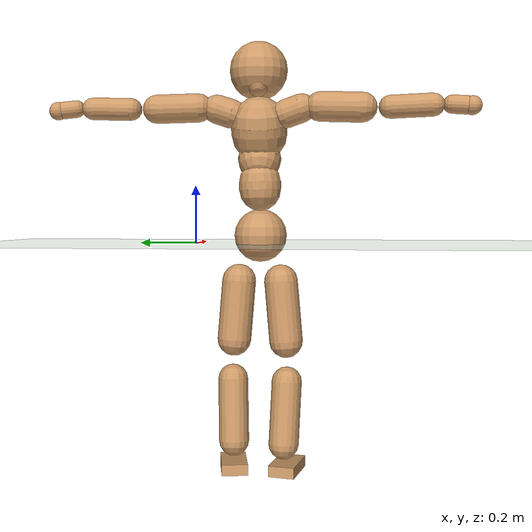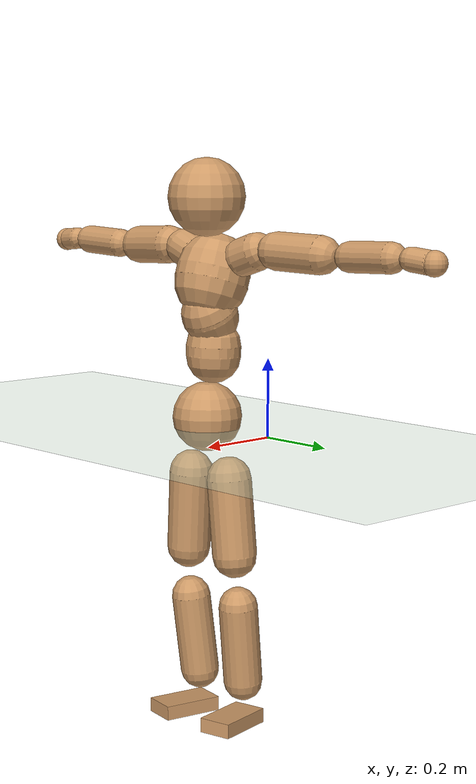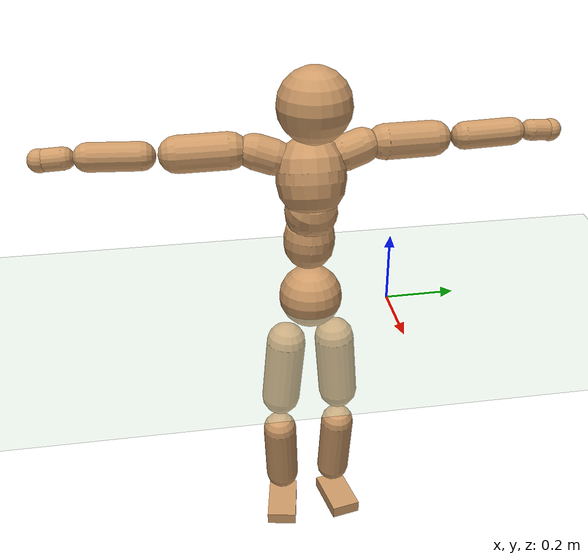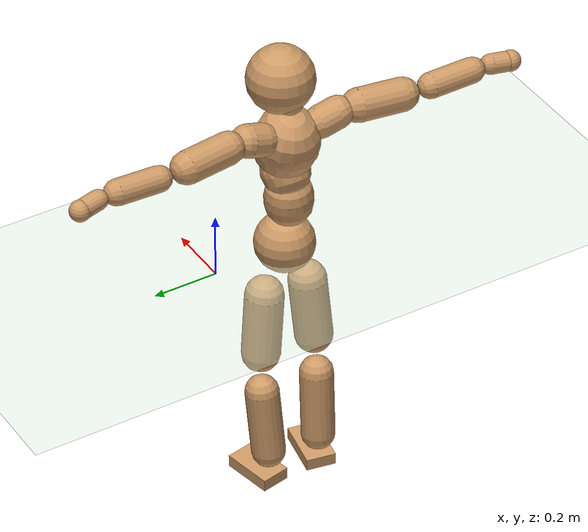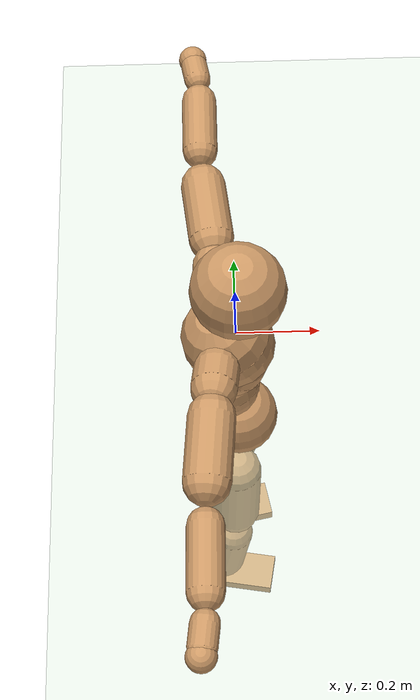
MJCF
<mujoco model="humanoid">
  <compiler coordinate="local"/>
  <default>
    <joint damping="0.0" armature="0.01" stiffness="0.0" limited="true"/>
    <geom conaffinity="1" condim="3" contype="7" margin="0.001" rgba="0.8 0.6 .4 1"/>
  </default>
  <asset>
    <texture type="skybox" builtin="gradient" rgb1=".4 .5 .6" rgb2="0 0 0" width="100" height="100"/>
    <texture builtin="flat" height="1278" mark="cross" markrgb="1 1 1" name="texgeom" random="0.01" rgb1="0.8 0.6 0.4" rgb2="0.8 0.6 0.4" type="cube" width="127"/>
    <texture builtin="checker" height="100" name="texplane" rgb1="0 0 0" rgb2="0.8 0.8 0.8" type="2d" width="100"/>
    <material name="MatPlane" reflectance="0.5" shininess="1" specular="1" texrepeat="60 60" texture="texplane"/>
    <material name="geom" texture="texgeom" texuniform="true"/>
  </asset>
  <worldbody>
    <light cutoff="100" diffuse="1 1 1" dir="-0 0 -1.3" directional="true" exponent="1" pos="0 0 1.3" specular=".1 .1 .1"/>
    <geom conaffinity="1" condim="3" name="floor" pos="0 0 0" rgba="0.8 0.9 0.8 1" size="100 100 .2" type="plane" material="MatPlane"/>
    <body name="Pelvis" pos="-0.0002 -0.2273 0.0277">
      <freejoint name="Pelvis"/>
      <geom type="sphere" contype="1" conaffinity="1" density="500" size="0.0911" pos="0.0000 0.0000 0.0000" name="Pelvis"/>
      <body name="L_Hip" pos="-0.0075 0.0687 -0.0897">
        <joint name="L_Hip_x" type="hinge" pos="0 0 0" axis="1 0 0" stiffness="800" damping="80" armature="0.02" range="-180.0000 180.0000"/>
        <joint name="L_Hip_y" type="hinge" pos="0 0 0" axis="0 1 0" stiffness="800" damping="80" armature="0.02" range="-180.0000 180.0000"/>
        <joint name="L_Hip_z" type="hinge" pos="0 0 0" axis="0 0 1" stiffness="800" damping="80" armature="0.02" range="-180.0000 180.0000"/>
        <geom type="capsule" contype="1" conaffinity="1" density="500" fromto="-0.0017 0.0053 -0.0678 -0.0066 0.0214 -0.2710" size="0.0587" name="L_Hip"/>
        <body name="L_Knee" pos="-0.0083 0.0267 -0.3388">
          <joint name="L_Knee_x" type="hinge" pos="0 0 0" axis="1 0 0" stiffness="800" damping="80" armature="0.02" range="-180.0000 180.0000"/>
          <joint name="L_Knee_y" type="hinge" pos="0 0 0" axis="0 1 0" stiffness="800" damping="80" armature="0.02" range="-180.0000 180.0000"/>
          <joint name="L_Knee_z" type="hinge" pos="0 0 0" axis="0 0 1" stiffness="800" damping="80" armature="0.02" range="-180.0000 180.0000"/>
          <geom type="capsule" contype="1" conaffinity="1" density="500" fromto="-0.0080 -0.0022 -0.0707 -0.0322 -0.0089 -0.2827" size="0.0516" name="L_Knee"/>
          <body name="L_Ankle" pos="-0.0402 -0.0111 -0.3534">
            <joint name="L_Ankle_x" type="hinge" pos="0 0 0" axis="1 0 0" stiffness="800" damping="80" armature="0.02" range="-180.0000 180.0000"/>
            <joint name="L_Ankle_y" type="hinge" pos="0 0 0" axis="0 1 0" stiffness="800" damping="80" armature="0.02" range="-180.0000 180.0000"/>
            <joint name="L_Ankle_z" type="hinge" pos="0 0 0" axis="0 0 1" stiffness="800" damping="80" armature="0.02" range="-180.0000 180.0000"/>
            <geom type="box" contype="1" conaffinity="1" density="500" pos="0.0555 0.0111 -0.0257" size="0.0798 0.0451 0.0193" quat="0.9951 0.0000 0.0000 0.0987" name="L_Ankle"/>
            <body name="L_Toe" pos="0.111 0.0222 -0.0514">
              <joint name="L_Toe_x" type="hinge" pos="0 0 0" axis="1 0 0" stiffness="500" damping="50" armature="0.02" range="-180.0000 180.0000"/>
              <joint name="L_Toe_y" type="hinge" pos="0 0 0" axis="0 1 0" stiffness="500" damping="50" armature="0.02" range="-180.0000 180.0000"/>
              <joint name="L_Toe_z" type="hinge" pos="0 0 0" axis="0 0 1" stiffness="500" damping="50" armature="0.02" range="-180.0000 180.0000"/>
              <geom type="box" contype="1" conaffinity="1" density="500" pos="0.0000 0.0000 0.0253" size="0.0009 0.0023 0.0009" quat="0.9944 0.0000 0.0000 0.1054" name="L_Toe"/>
            </body>
          </body>
        </body>
      </body>
      <body name="R_Hip" pos="-0.0048 -0.0658 -0.0891">
        <joint name="R_Hip_x" type="hinge" pos="0 0 0" axis="1 0 0" stiffness="800" damping="80" armature="0.02" range="-180.0000 180.0000"/>
        <joint name="R_Hip_y" type="hinge" pos="0 0 0" axis="0 1 0" stiffness="800" damping="80" armature="0.02" range="-180.0000 180.0000"/>
        <joint name="R_Hip_z" type="hinge" pos="0 0 0" axis="0 0 1" stiffness="800" damping="80" armature="0.02" range="-180.0000 180.0000"/>
        <geom type="capsule" contype="1" conaffinity="1" density="500" fromto="-0.0021 -0.0062 -0.0691 -0.0084 -0.0247 -0.2765" size="0.0581" name="R_Hip"/>
        <body name="R_Knee" pos="-0.0106 -0.0309 -0.3456">
          <joint name="R_Knee_x" type="hinge" pos="0 0 0" axis="1 0 0" stiffness="800" damping="80" armature="0.02" range="-180.0000 180.0000"/>
          <joint name="R_Knee_y" type="hinge" pos="0 0 0" axis="0 1 0" stiffness="800" damping="80" armature="0.02" range="-180.0000 180.0000"/>
          <joint name="R_Knee_z" type="hinge" pos="0 0 0" axis="0 0 1" stiffness="800" damping="80" armature="0.02" range="-180.0000 180.0000"/>
          <geom type="capsule" contype="1" conaffinity="1" density="500" fromto="-0.0079 0.0027 -0.0709 -0.0316 0.0110 -0.2835" size="0.052" name="R_Knee"/>
          <body name="R_Ankle" pos="-0.0395 0.0137 -0.3543">
            <joint name="R_Ankle_x" type="hinge" pos="0 0 0" axis="1 0 0" stiffness="800" damping="80" armature="0.02" range="-180.0000 180.0000"/>
            <joint name="R_Ankle_y" type="hinge" pos="0 0 0" axis="0 1 0" stiffness="800" damping="80" armature="0.02" range="-180.0000 180.0000"/>
            <joint name="R_Ankle_z" type="hinge" pos="0 0 0" axis="0 0 1" stiffness="800" damping="80" armature="0.02" range="-180.0000 180.0000"/>
            <geom type="box" contype="1" conaffinity="1" density="500" pos="0.0572 -0.0102 -0.0213" size="0.0807 0.0459 0.019" quat="0.9961 0.0000 0.0000 -0.0879" name="R_Ankle"/>
            <body name="R_Toe" pos="0.1145 -0.0204 -0.0425">
              <joint name="R_Toe_x" type="hinge" pos="0 0 0" axis="1 0 0" stiffness="500" damping="50" armature="0.02" range="-180.0000 180.0000"/>
              <joint name="R_Toe_y" type="hinge" pos="0 0 0" axis="0 1 0" stiffness="500" damping="50" armature="0.02" range="-180.0000 180.0000"/>
              <joint name="R_Toe_z" type="hinge" pos="0 0 0" axis="0 0 1" stiffness="500" damping="50" armature="0.02" range="-180.0000 180.0000"/>
              <geom type="box" contype="1" conaffinity="1" density="500" pos="0.0000 0.0000 0.0235" size="0.0009 0.0023 0.0011" quat="0.9969 0.0000 0.0000 -0.0781" name="R_Toe"/>
            </body>
          </body>
        </body>
      </body>
      <body name="Torso" pos="-0.0221 -0.0027 0.1035">
        <joint name="Torso_x" type="hinge" pos="0 0 0" axis="1 0 0" stiffness="1000" damping="100" armature="0.02" range="-180.0000 180.0000"/>
        <joint name="Torso_y" type="hinge" pos="0 0 0" axis="0 1 0" stiffness="1000" damping="100" armature="0.02" range="-180.0000 180.0000"/>
        <joint name="Torso_z" type="hinge" pos="0 0 0" axis="0 0 1" stiffness="1000" damping="100" armature="0.02" range="-180.0000 180.0000"/>
        <geom type="capsule" contype="1" conaffinity="1" density="500" fromto="-0.0007 0.0023 0.0806 -0.0004 0.0015 0.0538" size="0.0722" name="Torso"/>
        <body name="Spine" pos="-0.0011 0.0039 0.1344">
          <joint name="Spine_x" type="hinge" pos="0 0 0" axis="1 0 0" stiffness="1000" damping="100" armature="0.02" range="-180.0000 180.0000"/>
          <joint name="Spine_y" type="hinge" pos="0 0 0" axis="0 1 0" stiffness="1000" damping="100" armature="0.02" range="-180.0000 180.0000"/>
          <joint name="Spine_z" type="hinge" pos="0 0 0" axis="0 0 1" stiffness="1000" damping="100" armature="0.02" range="-180.0000 180.0000"/>
          <geom type="capsule" contype="1" conaffinity="1" density="500" fromto="0.0178 0.0012 0.0312 0.0119 0.0008 0.0208" size="0.0737" name="Spine"/>
          <body name="Chest" pos="0.0297 0.002 0.052">
            <joint name="Chest_x" type="hinge" pos="0 0 0" axis="1 0 0" stiffness="1000" damping="100" armature="0.02" range="-180.0000 180.0000"/>
            <joint name="Chest_y" type="hinge" pos="0 0 0" axis="0 1 0" stiffness="1000" damping="100" armature="0.02" range="-180.0000 180.0000"/>
            <joint name="Chest_z" type="hinge" pos="0 0 0" axis="0 0 1" stiffness="1000" damping="100" armature="0.02" range="-180.0000 180.0000"/>
            <geom type="capsule" contype="1" conaffinity="1" density="500" fromto="-0.0283 -0.0004 0.0898 -0.0189 -0.0003 0.0599" size="0.0964" name="Chest"/>
            <body name="Neck" pos="-0.0538 -0.0003 0.2121">
              <joint name="Neck_x" type="hinge" pos="0 0 0" axis="1 0 0" stiffness="500" damping="50" armature="0.02" range="-180.0000 180.0000"/>
              <joint name="Neck_y" type="hinge" pos="0 0 0" axis="0 1 0" stiffness="500" damping="50" armature="0.02" range="-180.0000 180.0000"/>
              <joint name="Neck_z" type="hinge" pos="0 0 0" axis="0 0 1" stiffness="500" damping="50" armature="0.02" range="-180.0000 180.0000"/>
              <geom type="capsule" contype="1" conaffinity="1" density="500" fromto="0.0108 0.0008 0.0129 0.0430 0.0034 0.0516" size="0.0414" name="Neck"/>
              <body name="Head" pos="0.0538 0.0042 0.0645">
                <joint name="Head_x" type="hinge" pos="0 0 0" axis="1 0 0" stiffness="500" damping="50" armature="0.02" range="-180.0000 180.0000"/>
                <joint name="Head_y" type="hinge" pos="0 0 0" axis="0 1 0" stiffness="500" damping="50" armature="0.02" range="-180.0000 180.0000"/>
                <joint name="Head_z" type="hinge" pos="0 0 0" axis="0 0 1" stiffness="500" damping="50" armature="0.02" range="-180.0000 180.0000"/>
                <geom type="sphere" contype="1" conaffinity="1" density="500" size="0.1003" pos="0.0000 0.0000 0.0000" name="Head"/>
              </body>
            </body>
            <body name="L_Thorax" pos="-0.0408 0.0745 0.1199">
              <joint name="L_Thorax_x" type="hinge" pos="0 0 0" axis="1 0 0" stiffness="500" damping="50" armature="0.02" range="-180.0000 180.0000"/>
              <joint name="L_Thorax_y" type="hinge" pos="0 0 0" axis="0 1 0" stiffness="500" damping="50" armature="0.02" range="-180.0000 180.0000"/>
              <joint name="L_Thorax_z" type="hinge" pos="0 0 0" axis="0 0 1" stiffness="500" damping="50" armature="0.02" range="-180.0000 180.0000"/>
              <geom type="capsule" contype="1" conaffinity="1" density="500" fromto="-0.0014 0.0168 0.0056 -0.0056 0.0670 0.0224" size="0.0492" name="L_Thorax"/>
              <body name="L_Shoulder" pos="-0.0069 0.0838 0.028">
                <joint name="L_Shoulder_x" type="hinge" pos="0 0 0" axis="1 0 0" stiffness="500" damping="50" armature="0.02" range="-720.0000 720.0000"/>
                <joint name="L_Shoulder_y" type="hinge" pos="0 0 0" axis="0 1 0" stiffness="500" damping="50" armature="0.02" range="-720.0000 720.0000"/>
                <joint name="L_Shoulder_z" type="hinge" pos="0 0 0" axis="0 0 1" stiffness="500" damping="50" armature="0.02" range="-720.0000 720.0000"/>
                <geom type="capsule" contype="1" conaffinity="1" density="500" fromto="-0.0052 0.0468 -0.0014 -0.0208 0.1873 -0.0055" size="0.0488" name="L_Shoulder"/>
                <body name="L_Elbow" pos="-0.026 0.2341 -0.0069">
                  <joint name="L_Elbow_x" type="hinge" pos="0 0 0" axis="1 0 0" stiffness="500" damping="50" armature="0.02" range="-720.0000 720.0000"/>
                  <joint name="L_Elbow_y" type="hinge" pos="0 0 0" axis="0 1 0" stiffness="500" damping="50" armature="0.02" range="-720.0000 720.0000"/>
                  <joint name="L_Elbow_z" type="hinge" pos="0 0 0" axis="0 0 1" stiffness="500" damping="50" armature="0.02" range="-720.0000 720.0000"/>
                  <geom type="capsule" contype="1" conaffinity="1" density="500" fromto="-0.0000 0.0440 0.0014 -0.0001 0.1760 0.0057" size="0.0384" name="L_Elbow"/>
                  <body name="L_Wrist" pos="-0.0002 0.22 0.0071">
                    <joint name="L_Wrist_x" type="hinge" pos="0 0 0" axis="1 0 0" stiffness="300" damping="30" armature="0.02" range="-180.0000 180.0000"/>
                    <joint name="L_Wrist_y" type="hinge" pos="0 0 0" axis="0 1 0" stiffness="300" damping="30" armature="0.02" range="-180.0000 180.0000"/>
                    <joint name="L_Wrist_z" type="hinge" pos="0 0 0" axis="0 0 1" stiffness="300" damping="30" armature="0.02" range="-180.0000 180.0000"/>
                    <geom type="capsule" contype="1" conaffinity="1" density="500" fromto="-0.0025 0.0154 -0.0018 -0.0101 0.0617 -0.0073" size="0.0295" name="L_Wrist"/>
                    <body name="L_Hand" pos="-0.0127 0.0771 -0.0091">
                      <joint name="L_Hand_x" type="hinge" pos="0 0 0" axis="1 0 0" stiffness="300" damping="30" armature="0.02" range="-180.0000 180.0000"/>
                      <joint name="L_Hand_y" type="hinge" pos="0 0 0" axis="0 1 0" stiffness="300" damping="30" armature="0.02" range="-180.0000 180.0000"/>
                      <joint name="L_Hand_z" type="hinge" pos="0 0 0" axis="0 0 1" stiffness="300" damping="30" armature="0.02" range="-180.0000 180.0000"/>
                      <geom type="sphere" contype="1" conaffinity="1" density="500" size="0.0313" pos="0.0000 0.0000 0.0000" name="L_Hand"/>
                    </body>
                  </body>
                </body>
              </body>
            </body>
            <body name="R_Thorax" pos="-0.0468 -0.0764 0.1169">
              <joint name="R_Thorax_x" type="hinge" pos="0 0 0" axis="1 0 0" stiffness="500" damping="50" armature="0.02" range="-180.0000 180.0000"/>
              <joint name="R_Thorax_y" type="hinge" pos="0 0 0" axis="0 1 0" stiffness="500" damping="50" armature="0.02" range="-180.0000 180.0000"/>
              <joint name="R_Thorax_z" type="hinge" pos="0 0 0" axis="0 0 1" stiffness="500" damping="50" armature="0.02" range="-180.0000 180.0000"/>
              <geom type="capsule" contype="1" conaffinity="1" density="500" fromto="-0.0022 -0.0178 0.0059 -0.0086 -0.0712 0.0237" size="0.0487" name="R_Thorax"/>
              <body name="R_Shoulder" pos="-0.0108 -0.0891 0.0296">
                <joint name="R_Shoulder_x" type="hinge" pos="0 0 0" axis="1 0 0" stiffness="500" damping="50" armature="0.02" range="-720.0000 720.0000"/>
                <joint name="R_Shoulder_y" type="hinge" pos="0 0 0" axis="0 1 0" stiffness="500" damping="50" armature="0.02" range="-720.0000 720.0000"/>
                <joint name="R_Shoulder_z" type="hinge" pos="0 0 0" axis="0 0 1" stiffness="500" damping="50" armature="0.02" range="-720.0000 720.0000"/>
                <geom type="capsule" contype="1" conaffinity="1" density="500" fromto="-0.0039 -0.0464 -0.0021 -0.0155 -0.1854 -0.0084" size="0.0505" name="R_Shoulder"/>
                <body name="R_Elbow" pos="-0.0194 -0.2318 -0.0105">
                  <joint name="R_Elbow_x" type="hinge" pos="0 0 0" axis="1 0 0" stiffness="500" damping="50" armature="0.02" range="-720.0000 720.0000"/>
                  <joint name="R_Elbow_y" type="hinge" pos="0 0 0" axis="0 1 0" stiffness="500" damping="50" armature="0.02" range="-720.0000 720.0000"/>
                  <joint name="R_Elbow_z" type="hinge" pos="0 0 0" axis="0 0 1" stiffness="500" damping="50" armature="0.02" range="-720.0000 720.0000"/>
                  <geom type="capsule" contype="1" conaffinity="1" density="500" fromto="-0.0007 -0.0460 0.0015 -0.0028 -0.1839 0.0062" size="0.0388" name="R_Elbow"/>
                  <body name="R_Wrist" pos="-0.0035 -0.2298 0.0077">
                    <joint name="R_Wrist_x" type="hinge" pos="0 0 0" axis="1 0 0" stiffness="300" damping="30" armature="0.02" range="-180.0000 180.0000"/>
                    <joint name="R_Wrist_y" type="hinge" pos="0 0 0" axis="0 1 0" stiffness="300" damping="30" armature="0.02" range="-180.0000 180.0000"/>
                    <joint name="R_Wrist_z" type="hinge" pos="0 0 0" axis="0 0 1" stiffness="300" damping="30" armature="0.02" range="-180.0000 180.0000"/>
                    <geom type="capsule" contype="1" conaffinity="1" density="500" fromto="-0.0020 -0.0157 -0.0014 -0.0081 -0.0629 -0.0055" size="0.0306" name="R_Wrist"/>
                    <body name="R_Hand" pos="-0.0101 -0.0787 -0.0069">
                      <joint name="R_Hand_x" type="hinge" pos="0 0 0" axis="1 0 0" stiffness="300" damping="30" armature="0.02" range="-180.0000 180.0000"/>
                      <joint name="R_Hand_y" type="hinge" pos="0 0 0" axis="0 1 0" stiffness="300" damping="30" armature="0.02" range="-180.0000 180.0000"/>
                      <joint name="R_Hand_z" type="hinge" pos="0 0 0" axis="0 0 1" stiffness="300" damping="30" armature="0.02" range="-180.0000 180.0000"/>
                      <geom type="sphere" contype="1" conaffinity="1" density="500" size="0.0318" pos="0.0000 0.0000 0.0000" name="R_Hand"/>
                    </body>
                  </body>
                </body>
              </body>
            </body>
          </body>
        </body>
      </body>
    </body>
  </worldbody>
  <actuator>
    <motor name="L_Hip_x" joint="L_Hip_x" gear="500"/>
    <motor name="L_Hip_y" joint="L_Hip_y" gear="500"/>
    <motor name="L_Hip_z" joint="L_Hip_z" gear="500"/>
    <motor name="L_Knee_x" joint="L_Knee_x" gear="500"/>
    <motor name="L_Knee_y" joint="L_Knee_y" gear="500"/>
    <motor name="L_Knee_z" joint="L_Knee_z" gear="500"/>
    <motor name="L_Ankle_x" joint="L_Ankle_x" gear="500"/>
    <motor name="L_Ankle_y" joint="L_Ankle_y" gear="500"/>
    <motor name="L_Ankle_z" joint="L_Ankle_z" gear="500"/>
    <motor name="L_Toe_x" joint="L_Toe_x" gear="500"/>
    <motor name="L_Toe_y" joint="L_Toe_y" gear="500"/>
    <motor name="L_Toe_z" joint="L_Toe_z" gear="500"/>
    <motor name="R_Hip_x" joint="R_Hip_x" gear="500"/>
    <motor name="R_Hip_y" joint="R_Hip_y" gear="500"/>
    <motor name="R_Hip_z" joint="R_Hip_z" gear="500"/>
    <motor name="R_Knee_x" joint="R_Knee_x" gear="500"/>
    <motor name="R_Knee_y" joint="R_Knee_y" gear="500"/>
    <motor name="R_Knee_z" joint="R_Knee_z" gear="500"/>
    <motor name="R_Ankle_x" joint="R_Ankle_x" gear="500"/>
    <motor name="R_Ankle_y" joint="R_Ankle_y" gear="500"/>
    <motor name="R_Ankle_z" joint="R_Ankle_z" gear="500"/>
    <motor name="R_Toe_x" joint="R_Toe_x" gear="500"/>
    <motor name="R_Toe_y" joint="R_Toe_y" gear="500"/>
    <motor name="R_Toe_z" joint="R_Toe_z" gear="500"/>
    <motor name="Torso_x" joint="Torso_x" gear="500"/>
    <motor name="Torso_y" joint="Torso_y" gear="500"/>
    <motor name="Torso_z" joint="Torso_z" gear="500"/>
    <motor name="Spine_x" joint="Spine_x" gear="500"/>
    <motor name="Spine_y" joint="Spine_y" gear="500"/>
    <motor name="Spine_z" joint="Spine_z" gear="500"/>
    <motor name="Chest_x" joint="Chest_x" gear="500"/>
    <motor name="Chest_y" joint="Chest_y" gear="500"/>
    <motor name="Chest_z" joint="Chest_z" gear="500"/>
    <motor name="Neck_x" joint="Neck_x" gear="500"/>
    <motor name="Neck_y" joint="Neck_y" gear="500"/>
    <motor name="Neck_z" joint="Neck_z" gear="500"/>
    <motor name="Head_x" joint="Head_x" gear="500"/>
    <motor name="Head_y" joint="Head_y" gear="500"/>
    <motor name="Head_z" joint="Head_z" gear="500"/>
    <motor name="L_Thorax_x" joint="L_Thorax_x" gear="500"/>
    <motor name="L_Thorax_y" joint="L_Thorax_y" gear="500"/>
    <motor name="L_Thorax_z" joint="L_Thorax_z" gear="500"/>
    <motor name="L_Shoulder_x" joint="L_Shoulder_x" gear="500"/>
    <motor name="L_Shoulder_y" joint="L_Shoulder_y" gear="500"/>
    <motor name="L_Shoulder_z" joint="L_Shoulder_z" gear="500"/>
    <motor name="L_Elbow_x" joint="L_Elbow_x" gear="500"/>
    <motor name="L_Elbow_y" joint="L_Elbow_y" gear="500"/>
    <motor name="L_Elbow_z" joint="L_Elbow_z" gear="500"/>
    <motor name="L_Wrist_x" joint="L_Wrist_x" gear="500"/>
    <motor name="L_Wrist_y" joint="L_Wrist_y" gear="500"/>
    <motor name="L_Wrist_z" joint="L_Wrist_z" gear="500"/>
    <motor name="L_Hand_x" joint="L_Hand_x" gear="500"/>
    <motor name="L_Hand_y" joint="L_Hand_y" gear="500"/>
    <motor name="L_Hand_z" joint="L_Hand_z" gear="500"/>
    <motor name="R_Thorax_x" joint="R_Thorax_x" gear="500"/>
    <motor name="R_Thorax_y" joint="R_Thorax_y" gear="500"/>
    <motor name="R_Thorax_z" joint="R_Thorax_z" gear="500"/>
    <motor name="R_Shoulder_x" joint="R_Shoulder_x" gear="500"/>
    <motor name="R_Shoulder_y" joint="R_Shoulder_y" gear="500"/>
    <motor name="R_Shoulder_z" joint="R_Shoulder_z" gear="500"/>
    <motor name="R_Elbow_x" joint="R_Elbow_x" gear="500"/>
    <motor name="R_Elbow_y" joint="R_Elbow_y" gear="500"/>
    <motor name="R_Elbow_z" joint="R_Elbow_z" gear="500"/>
    <motor name="R_Wrist_x" joint="R_Wrist_x" gear="500"/>
    <motor name="R_Wrist_y" joint="R_Wrist_y" gear="500"/>
    <motor name="R_Wrist_z" joint="R_Wrist_z" gear="500"/>
    <motor name="R_Hand_x" joint="R_Hand_x" gear="500"/>
    <motor name="R_Hand_y" joint="R_Hand_y" gear="500"/>
    <motor name="R_Hand_z" joint="R_Hand_z" gear="500"/>
  </actuator>
  <contact>
    <exclude body1="Torso" body2="Chest"/>
    <exclude body1="Head" body2="Chest"/>
    <exclude body1="R_Knee" body2="R_Toe"/>
    <exclude body1="R_Knee" body2="L_Ankle"/>
    <exclude body1="R_Knee" body2="L_Toe"/>
    <exclude body1="L_Knee" body2="L_Toe"/>
    <exclude body1="L_Knee" body2="R_Ankle"/>
    <exclude body1="L_Knee" body2="R_Toe"/>
    <exclude body1="L_Shoulder" body2="Chest"/>
    <exclude body1="R_Shoulder" body2="Chest"/>
  </contact>
  <sensor/>
  <size njmax="700" nconmax="700"/>
</mujoco>
